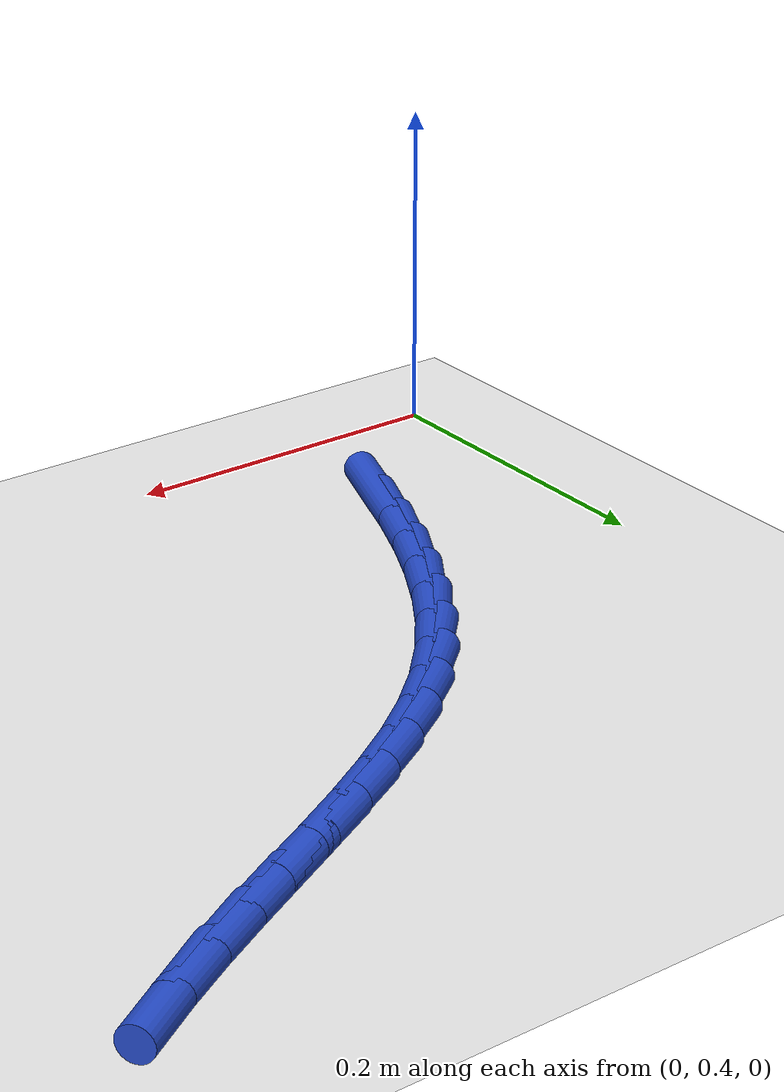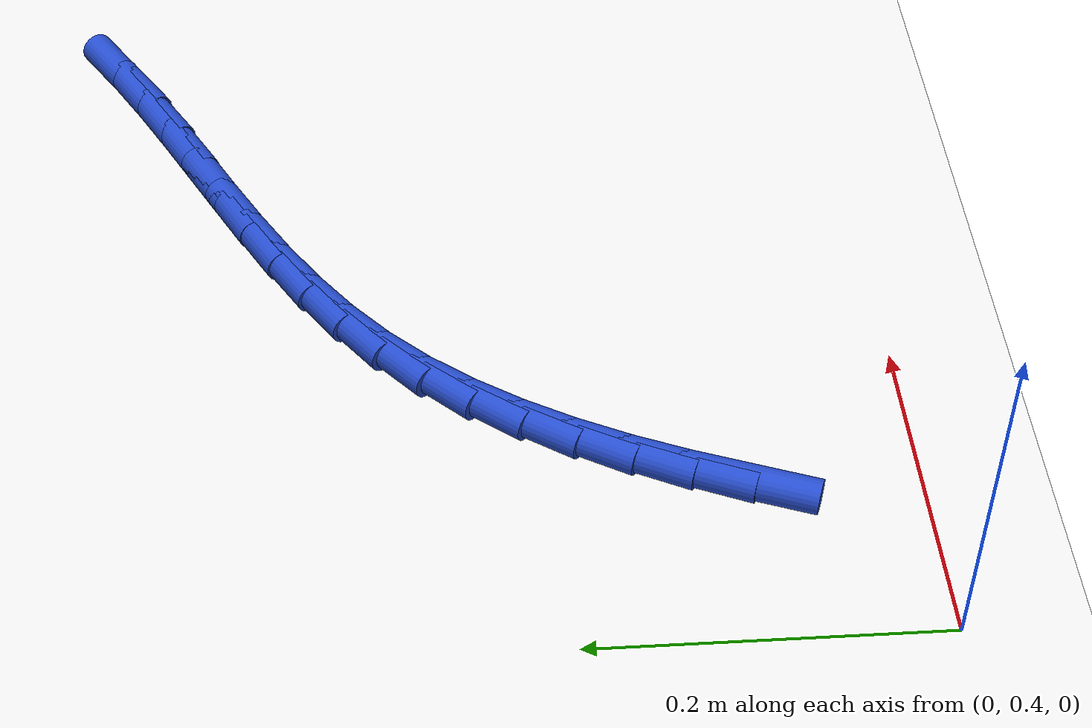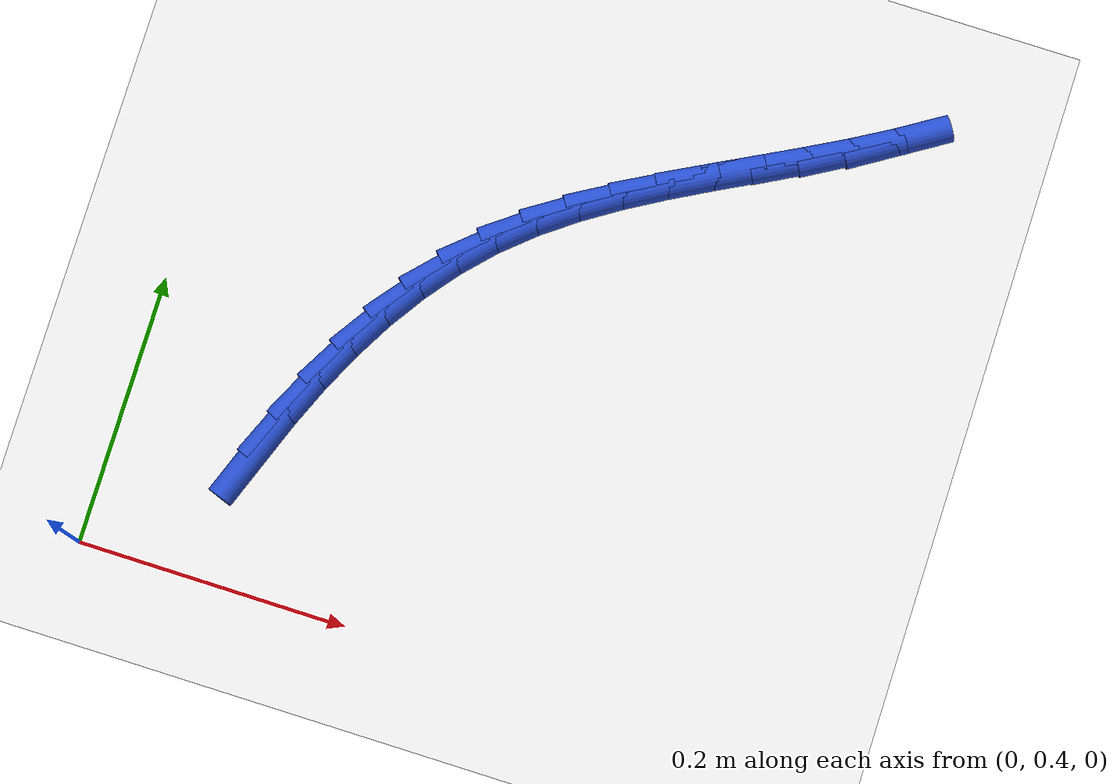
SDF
<sdf version="1.6">
 <world name="default">
  <model name="ground_plane">
   <static>1</static>
   <link name="link">
    <collision name="collision">
     <geometry><plane><normal>0 0 1</normal><size>100 100</size></plane></geometry>
     <surface><friction><ode><mu>100</mu><mu2>50</mu2></ode></friction></surface>
    </collision>
    <visual name="visual">
     <cast_shadows>0</cast_shadows>
     <geometry><plane><normal>0 0 1</normal><size>100 100</size></plane></geometry>
     <material>
      <script><uri>file://media/materials/scripts/gazebo.material</uri><name>Gazebo/WhiteGlow</name></script>
     </material>
    </visual>
   </link>
  </model>
  <model name="line">
   <link name="link_15">
    <pose>0.1006625208505474 0.4978040667280773 0.01 0 1.57 1.2134239499991615</pose>
    <collision name="collision">
     <geometry><cylinder><radius>0.01</radius><length>0.08</length></cylinder></geometry>
    </collision>
    <visual name="visual">
     <material>
      <script><name>Gazebo/Blue</name><uri>file://media/materials/scripts/gazebo.material</uri></script>
     </material>
     <geometry><cylinder><radius>0.01</radius><length>0.08</length></cylinder></geometry>
    </visual>
   </link>
   <link name="link_16">
    <pose>0.11265133558187257 0.5299107220530116 0.01 0 1.57 1.1688561181797685</pose>
    <collision name="collision">
     <geometry><cylinder><radius>0.01</radius><length>0.08</length></cylinder></geometry>
    </collision>
    <visual name="visual">
     <material>
      <script><name>Gazebo/Blue</name><uri>file://media/materials/scripts/gazebo.material</uri></script>
     </material>
     <geometry><cylinder><radius>0.01</radius><length>0.08</length></cylinder></geometry>
    </visual>
   </link>
   <link name="link_17">
    <pose>0.12588970497091015 0.5610538083279433 0.01 0 1.57 1.116280184276223</pose>
    <collision name="collision">
     <geometry><cylinder><radius>0.01</radius><length>0.08</length></cylinder></geometry>
    </collision>
    <visual name="visual">
     <material>
      <script><name>Gazebo/Blue</name><uri>file://media/materials/scripts/gazebo.material</uri></script>
     </material>
     <geometry><cylinder><radius>0.01</radius><length>0.08</length></cylinder></geometry>
    </visual>
   </link>
   <link name="link_18">
    <pose>0.14053881597437415 0.5910333311532128 0.01 0 1.57 1.05510644692636</pose>
    <collision name="collision">
     <geometry><cylinder><radius>0.01</radius><length>0.08</length></cylinder></geometry>
    </collision>
    <visual name="visual">
     <material>
      <script><name>Gazebo/Blue</name><uri>file://media/materials/scripts/gazebo.material</uri></script>
     </material>
     <geometry><cylinder><radius>0.01</radius><length>0.08</length></cylinder></geometry>
    </visual>
   </link>
   <link name="link_19">
    <pose>0.15675985554897875 0.6196492961291613 0.01 0 1.57 0.984864014666451</pose>
    <collision name="collision">
     <geometry><cylinder><radius>0.01</radius><length>0.08</length></cylinder></geometry>
    </collision>
    <visual name="visual">
     <material>
      <script><name>Gazebo/Blue</name><uri>file://media/materials/scripts/gazebo.material</uri></script>
     </material>
     <geometry><cylinder><radius>0.01</radius><length>0.08</length></cylinder></geometry>
    </visual>
   </link>
   <link name="link_20">
    <pose>0.174714010651438 0.6467017088561294 0.01 0 1.57 0.9053496829741122</pose>
    <collision name="collision">
     <geometry><cylinder><radius>0.01</radius><length>0.08</length></cylinder></geometry>
    </collision>
    <visual name="visual">
     <material>
      <script><name>Gazebo/Blue</name><uri>file://media/materials/scripts/gazebo.material</uri></script>
     </material>
     <geometry><cylinder><radius>0.01</radius><length>0.08</length></cylinder></geometry>
    </visual>
   </link>
   <link name="link_21">
    <pose>0.19456246823846585 0.6719905749344579 0.01 0 1.57 0.8168138881631174</pose>
    <collision name="collision">
     <geometry><cylinder><radius>0.01</radius><length>0.08</length></cylinder></geometry>
    </collision>
    <visual name="visual">
     <material>
      <script><name>Gazebo/Blue</name><uri>file://media/materials/scripts/gazebo.material</uri></script>
     </material>
     <geometry><cylinder><radius>0.01</radius><length>0.08</length></cylinder></geometry>
    </visual>
   </link>
   <link name="link_22">
    <pose>0.21646641526677662 0.6953158999644878 0.01 0 1.57 0.7229897747972343</pose>
    <collision name="collision">
     <geometry><cylinder><radius>0.01</radius><length>0.08</length></cylinder></geometry>
    </collision>
    <visual name="visual">
     <material>
      <script><name>Gazebo/Blue</name><uri>file://media/materials/scripts/gazebo.material</uri></script>
     </material>
     <geometry><cylinder><radius>0.01</radius><length>0.08</length></cylinder></geometry>
    </visual>
   </link>
   <link name="link_23">
    <pose>0.2405264829706774 0.7165458174239211 0.01 0 1.57 0.6409627825015399</pose>
    <collision name="collision">
     <geometry><cylinder><radius>0.01</radius><length>0.08</length></cylinder></geometry>
    </collision>
    <visual name="visual">
     <material>
      <script><name>Gazebo/Blue</name><uri>file://media/materials/scripts/gazebo.material</uri></script>
     </material>
     <geometry><cylinder><radius>0.01</radius><length>0.08</length></cylinder></geometry>
    </visual>
   </link>
   <link name="link_24">
    <pose>0.26650617566579515 0.7359277435478643 0.01 0 1.57 0.5765677331399491</pose>
    <collision name="collision">
     <geometry><cylinder><radius>0.01</radius><length>0.08</length></cylinder></geometry>
    </collision>
    <visual name="visual">
     <material>
      <script><name>Gazebo/Blue</name><uri>file://media/materials/scripts/gazebo.material</uri></script>
     </material>
     <geometry><cylinder><radius>0.01</radius><length>0.08</length></cylinder></geometry>
    </visual>
   </link>
   <link name="link_25">
    <pose>0.29405236525043665 0.7538403112212777 0.01 0 1.57 0.5292572946935187</pose>
    <collision name="collision">
     <geometry><cylinder><radius>0.01</radius><length>0.08</length></cylinder></geometry>
    </collision>
    <visual name="visual">
     <material>
      <script><name>Gazebo/Blue</name><uri>file://media/materials/scripts/gazebo.material</uri></script>
     </material>
     <geometry><cylinder><radius>0.01</radius><length>0.08</length></cylinder></geometry>
    </visual>
   </link>
   <link name="link_26">
    <pose>0.322811811224496 0.7706622797823259 0.01 0 1.57 0.49815054567101197</pose>
    <collision name="collision">
     <geometry><cylinder><radius>0.01</radius><length>0.08</length></cylinder></geometry>
    </collision>
    <visual name="visual">
     <material>
      <script><name>Gazebo/Blue</name><uri>file://media/materials/scripts/gazebo.material</uri></script>
     </material>
     <geometry><cylinder><radius>0.01</radius><length>0.08</length></cylinder></geometry>
    </visual>
   </link>
   <link name="link_27">
    <pose>0.3524312730878677 0.786772408569174 0.01 0 1.57 0.4824257304712187</pose>
    <collision name="collision">
     <geometry><cylinder><radius>0.01</radius><length>0.08</length></cylinder></geometry>
    </collision>
    <visual name="visual">
     <material>
      <script><name>Gazebo/Blue</name><uri>file://media/materials/scripts/gazebo.material</uri></script>
     </material>
     <geometry><cylinder><radius>0.01</radius><length>0.08</length></cylinder></geometry>
    </visual>
   </link>
   <link name="link_28">
    <pose>0.3825575103404464 0.8025494569199867 0.01 0 1.57 0.4815252766576677</pose>
    <collision name="collision">
     <geometry><cylinder><radius>0.01</radius><length>0.08</length></cylinder></geometry>
    </collision>
    <visual name="visual">
     <material>
      <script><name>Gazebo/Blue</name><uri>file://media/materials/scripts/gazebo.material</uri></script>
     </material>
     <geometry><cylinder><radius>0.01</radius><length>0.08</length></cylinder></geometry>
    </visual>
   </link>
   <link name="link_29">
    <pose>0.4128372824821262 0.818372184172929 0.01 0 1.57 0.4952344014103675</pose>
    <collision name="collision">
     <geometry><cylinder><radius>0.01</radius><length>0.08</length></cylinder></geometry>
    </collision>
    <visual name="visual">
     <material>
      <script><name>Gazebo/Blue</name><uri>file://media/materials/scripts/gazebo.material</uri></script>
     </material>
     <geometry><cylinder><radius>0.01</radius><length>0.08</length></cylinder></geometry>
    </visual>
   </link>
   <link name="link_30">
    <pose>0.4429173490128021 0.834619349666166 0.01 0 1.57 0.5236563129942602</pose>
    <collision name="collision">
     <geometry><cylinder><radius>0.01</radius><length>0.08</length></cylinder></geometry>
    </collision>
    <visual name="visual">
     <material>
      <script><name>Gazebo/Blue</name><uri>file://media/materials/scripts/gazebo.material</uri></script>
     </material>
     <geometry><cylinder><radius>0.01</radius><length>0.08</length></cylinder></geometry>
    </visual>
   </link>
   <link name="link_31">
    <pose>0.47244479630320724 0.8516692946262538 0.01 0 1.57 0.5605959052362508</pose>
    <collision name="collision">
     <geometry><cylinder><radius>0.01</radius><length>0.08</length></cylinder></geometry>
    </collision>
    <visual name="visual">
     <material>
      <script><name>Gazebo/Blue</name><uri>file://media/materials/scripts/gazebo.material</uri></script>
     </material>
     <geometry><cylinder><radius>0.01</radius><length>0.08</length></cylinder></geometry>
    </visual>
   </link>
  </model>
 </world>
</sdf>
